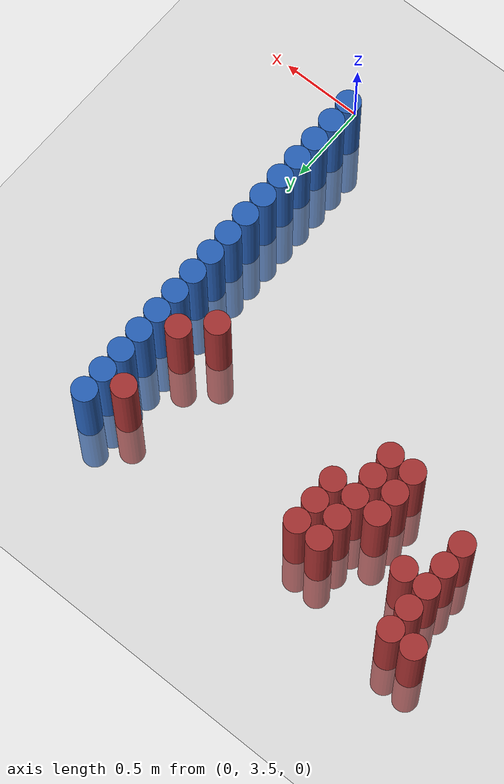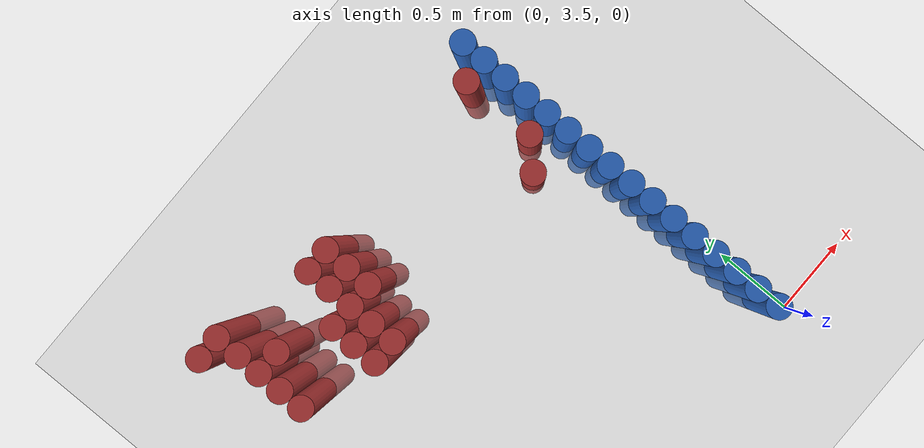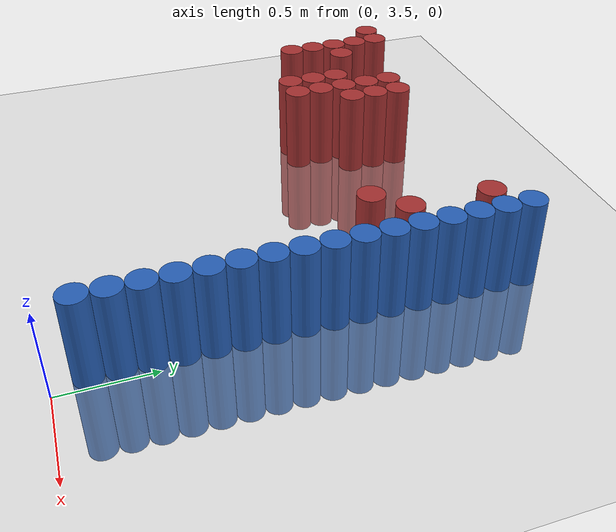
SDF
<sdf version="1.6">
 <world name="default">
  <model name="ground_plane">
   <static>1</static>
   <link name="link">
    <collision name="collision">
     <geometry><plane><normal>0 0 1</normal><size>100 100</size></plane></geometry>
     <surface><friction><ode><mu>100</mu><mu2>50</mu2></ode></friction></surface>
    </collision>
    <visual name="visual">
     <cast_shadows>0</cast_shadows>
     <geometry><plane><normal>0 0 1</normal><size>100 100</size></plane></geometry>
     <material>
      <script><uri>file://media/materials/scripts/gazebo.material</uri><name>Gazebo/Grey</name></script>
     </material>
    </visual>
   </link>
  </model>
  <model name="unit_cylinder_76">
   <static>1</static>
   <pose>-0.075000 3.675000 0.000000 0.000000 0.000000 0.000000</pose>
   <link name="link">
    <inertial>
     <mass>1</mass>
     <inertia><ixx>0.145833</ixx><ixy>0</ixy><ixz>0</ixz><iyy>0.145833</iyy><iyz>0</iyz><izz>0.125</izz></inertia>
    </inertial>
    <collision name="collision">
     <geometry><cylinder><radius>0.075000</radius><length>1</length></cylinder></geometry>
    </collision>
    <visual name="visual">
     <geometry><cylinder><radius>0.075000</radius><length>1</length></cylinder></geometry>
     <material>
      <ambient>0.152000 0.379000 0.720000 1</ambient>
      <diffuse>0.152000 0.379000 0.720000 1</diffuse>
     </material>
     <material>
      <script><name>Gazebo/Grey</name><uri>file://media/materials/scripts/gazebo.material</uri></script>
     </material>
    </visual>
    <sensor name="sensor_contact" type="contact"><contact><collision>collision</collision></contact></sensor>
   </link>
   <plugin filename="gz-sim-touchplugin-system" name="gz::sim::systems::TouchPlugin">
    <target>robot</target>
    <namespace>robot</namespace>
    <time>0.001</time>
    <enabled>true</enabled>
   </plugin>
  </model>
  <model name="unit_cylinder_78">
   <static>1</static>
   <pose>-0.075000 3.825000 0.000000 0.000000 0.000000 0.000000</pose>
   <link name="link">
    <inertial>
     <mass>1</mass>
     <inertia><ixx>0.145833</ixx><ixy>0</ixy><ixz>0</ixz><iyy>0.145833</iyy><iyz>0</iyz><izz>0.125</izz></inertia>
    </inertial>
    <collision name="collision">
     <geometry><cylinder><radius>0.075000</radius><length>1</length></cylinder></geometry>
    </collision>
    <visual name="visual">
     <geometry><cylinder><radius>0.075000</radius><length>1</length></cylinder></geometry>
     <material>
      <ambient>0.152000 0.379000 0.720000 1</ambient>
      <diffuse>0.152000 0.379000 0.720000 1</diffuse>
     </material>
     <material>
      <script><name>Gazebo/Grey</name><uri>file://media/materials/scripts/gazebo.material</uri></script>
     </material>
    </visual>
    <sensor name="sensor_contact" type="contact"><contact><collision>collision</collision></contact></sensor>
   </link>
   <plugin filename="gz-sim-touchplugin-system" name="gz::sim::systems::TouchPlugin">
    <target>robot</target>
    <namespace>robot</namespace>
    <time>0.001</time>
    <enabled>true</enabled>
   </plugin>
  </model>
  <model name="unit_cylinder_80">
   <static>1</static>
   <pose>-0.075000 3.975000 0.000000 0.000000 0.000000 0.000000</pose>
   <link name="link">
    <inertial>
     <mass>1</mass>
     <inertia><ixx>0.145833</ixx><ixy>0</ixy><ixz>0</ixz><iyy>0.145833</iyy><iyz>0</iyz><izz>0.125</izz></inertia>
    </inertial>
    <collision name="collision">
     <geometry><cylinder><radius>0.075000</radius><length>1</length></cylinder></geometry>
    </collision>
    <visual name="visual">
     <geometry><cylinder><radius>0.075000</radius><length>1</length></cylinder></geometry>
     <material>
      <ambient>0.152000 0.379000 0.720000 1</ambient>
      <diffuse>0.152000 0.379000 0.720000 1</diffuse>
     </material>
     <material>
      <script><name>Gazebo/Grey</name><uri>file://media/materials/scripts/gazebo.material</uri></script>
     </material>
    </visual>
    <sensor name="sensor_contact" type="contact"><contact><collision>collision</collision></contact></sensor>
   </link>
   <plugin filename="gz-sim-touchplugin-system" name="gz::sim::systems::TouchPlugin">
    <target>robot</target>
    <namespace>robot</namespace>
    <time>0.001</time>
    <enabled>true</enabled>
   </plugin>
  </model>
  <model name="unit_cylinder_82">
   <static>1</static>
   <pose>-0.075000 4.125000 0.000000 0.000000 0.000000 0.000000</pose>
   <link name="link">
    <inertial>
     <mass>1</mass>
     <inertia><ixx>0.145833</ixx><ixy>0</ixy><ixz>0</ixz><iyy>0.145833</iyy><iyz>0</iyz><izz>0.125</izz></inertia>
    </inertial>
    <collision name="collision">
     <geometry><cylinder><radius>0.075000</radius><length>1</length></cylinder></geometry>
    </collision>
    <visual name="visual">
     <geometry><cylinder><radius>0.075000</radius><length>1</length></cylinder></geometry>
     <material>
      <ambient>0.152000 0.379000 0.720000 1</ambient>
      <diffuse>0.152000 0.379000 0.720000 1</diffuse>
     </material>
     <material>
      <script><name>Gazebo/Grey</name><uri>file://media/materials/scripts/gazebo.material</uri></script>
     </material>
    </visual>
    <sensor name="sensor_contact" type="contact"><contact><collision>collision</collision></contact></sensor>
   </link>
   <plugin filename="gz-sim-touchplugin-system" name="gz::sim::systems::TouchPlugin">
    <target>robot</target>
    <namespace>robot</namespace>
    <time>0.001</time>
    <enabled>true</enabled>
   </plugin>
  </model>
  <model name="unit_cylinder_84">
   <static>1</static>
   <pose>-0.075000 4.275000 0.000000 0.000000 0.000000 0.000000</pose>
   <link name="link">
    <inertial>
     <mass>1</mass>
     <inertia><ixx>0.145833</ixx><ixy>0</ixy><ixz>0</ixz><iyy>0.145833</iyy><iyz>0</iyz><izz>0.125</izz></inertia>
    </inertial>
    <collision name="collision">
     <geometry><cylinder><radius>0.075000</radius><length>1</length></cylinder></geometry>
    </collision>
    <visual name="visual">
     <geometry><cylinder><radius>0.075000</radius><length>1</length></cylinder></geometry>
     <material>
      <ambient>0.152000 0.379000 0.720000 1</ambient>
      <diffuse>0.152000 0.379000 0.720000 1</diffuse>
     </material>
     <material>
      <script><name>Gazebo/Grey</name><uri>file://media/materials/scripts/gazebo.material</uri></script>
     </material>
    </visual>
    <sensor name="sensor_contact" type="contact"><contact><collision>collision</collision></contact></sensor>
   </link>
   <plugin filename="gz-sim-touchplugin-system" name="gz::sim::systems::TouchPlugin">
    <target>robot</target>
    <namespace>robot</namespace>
    <time>0.001</time>
    <enabled>true</enabled>
   </plugin>
  </model>
  <model name="unit_cylinder_86">
   <static>1</static>
   <pose>-0.075000 4.425000 0.000000 0.000000 0.000000 0.000000</pose>
   <link name="link">
    <inertial>
     <mass>1</mass>
     <inertia><ixx>0.145833</ixx><ixy>0</ixy><ixz>0</ixz><iyy>0.145833</iyy><iyz>0</iyz><izz>0.125</izz></inertia>
    </inertial>
    <collision name="collision">
     <geometry><cylinder><radius>0.075000</radius><length>1</length></cylinder></geometry>
    </collision>
    <visual name="visual">
     <geometry><cylinder><radius>0.075000</radius><length>1</length></cylinder></geometry>
     <material>
      <ambient>0.152000 0.379000 0.720000 1</ambient>
      <diffuse>0.152000 0.379000 0.720000 1</diffuse>
     </material>
     <material>
      <script><name>Gazebo/Grey</name><uri>file://media/materials/scripts/gazebo.material</uri></script>
     </material>
    </visual>
    <sensor name="sensor_contact" type="contact"><contact><collision>collision</collision></contact></sensor>
   </link>
   <plugin filename="gz-sim-touchplugin-system" name="gz::sim::systems::TouchPlugin">
    <target>robot</target>
    <namespace>robot</namespace>
    <time>0.001</time>
    <enabled>true</enabled>
   </plugin>
  </model>
  <model name="unit_cylinder_88">
   <static>1</static>
   <pose>-0.075000 4.575000 0.000000 0.000000 0.000000 0.000000</pose>
   <link name="link">
    <inertial>
     <mass>1</mass>
     <inertia><ixx>0.145833</ixx><ixy>0</ixy><ixz>0</ixz><iyy>0.145833</iyy><iyz>0</iyz><izz>0.125</izz></inertia>
    </inertial>
    <collision name="collision">
     <geometry><cylinder><radius>0.075000</radius><length>1</length></cylinder></geometry>
    </collision>
    <visual name="visual">
     <geometry><cylinder><radius>0.075000</radius><length>1</length></cylinder></geometry>
     <material>
      <ambient>0.152000 0.379000 0.720000 1</ambient>
      <diffuse>0.152000 0.379000 0.720000 1</diffuse>
     </material>
     <material>
      <script><name>Gazebo/Grey</name><uri>file://media/materials/scripts/gazebo.material</uri></script>
     </material>
    </visual>
    <sensor name="sensor_contact" type="contact"><contact><collision>collision</collision></contact></sensor>
   </link>
   <plugin filename="gz-sim-touchplugin-system" name="gz::sim::systems::TouchPlugin">
    <target>robot</target>
    <namespace>robot</namespace>
    <time>0.001</time>
    <enabled>true</enabled>
   </plugin>
  </model>
  <model name="unit_cylinder_90">
   <static>1</static>
   <pose>-0.075000 4.725000 0.000000 0.000000 0.000000 0.000000</pose>
   <link name="link">
    <inertial>
     <mass>1</mass>
     <inertia><ixx>0.145833</ixx><ixy>0</ixy><ixz>0</ixz><iyy>0.145833</iyy><iyz>0</iyz><izz>0.125</izz></inertia>
    </inertial>
    <collision name="collision">
     <geometry><cylinder><radius>0.075000</radius><length>1</length></cylinder></geometry>
    </collision>
    <visual name="visual">
     <geometry><cylinder><radius>0.075000</radius><length>1</length></cylinder></geometry>
     <material>
      <ambient>0.152000 0.379000 0.720000 1</ambient>
      <diffuse>0.152000 0.379000 0.720000 1</diffuse>
     </material>
     <material>
      <script><name>Gazebo/Grey</name><uri>file://media/materials/scripts/gazebo.material</uri></script>
     </material>
    </visual>
    <sensor name="sensor_contact" type="contact"><contact><collision>collision</collision></contact></sensor>
   </link>
   <plugin filename="gz-sim-touchplugin-system" name="gz::sim::systems::TouchPlugin">
    <target>robot</target>
    <namespace>robot</namespace>
    <time>0.001</time>
    <enabled>true</enabled>
   </plugin>
  </model>
  <model name="unit_cylinder_92">
   <static>1</static>
   <pose>-0.075000 4.875000 0.000000 0.000000 0.000000 0.000000</pose>
   <link name="link">
    <inertial>
     <mass>1</mass>
     <inertia><ixx>0.145833</ixx><ixy>0</ixy><ixz>0</ixz><iyy>0.145833</iyy><iyz>0</iyz><izz>0.125</izz></inertia>
    </inertial>
    <collision name="collision">
     <geometry><cylinder><radius>0.075000</radius><length>1</length></cylinder></geometry>
    </collision>
    <visual name="visual">
     <geometry><cylinder><radius>0.075000</radius><length>1</length></cylinder></geometry>
     <material>
      <ambient>0.152000 0.379000 0.720000 1</ambient>
      <diffuse>0.152000 0.379000 0.720000 1</diffuse>
     </material>
     <material>
      <script><name>Gazebo/Grey</name><uri>file://media/materials/scripts/gazebo.material</uri></script>
     </material>
    </visual>
    <sensor name="sensor_contact" type="contact"><contact><collision>collision</collision></contact></sensor>
   </link>
   <plugin filename="gz-sim-touchplugin-system" name="gz::sim::systems::TouchPlugin">
    <target>robot</target>
    <namespace>robot</namespace>
    <time>0.001</time>
    <enabled>true</enabled>
   </plugin>
  </model>
  <model name="unit_cylinder_94">
   <static>1</static>
   <pose>-0.075000 5.025000 0.000000 0.000000 0.000000 0.000000</pose>
   <link name="link">
    <inertial>
     <mass>1</mass>
     <inertia><ixx>0.145833</ixx><ixy>0</ixy><ixz>0</ixz><iyy>0.145833</iyy><iyz>0</iyz><izz>0.125</izz></inertia>
    </inertial>
    <collision name="collision">
     <geometry><cylinder><radius>0.075000</radius><length>1</length></cylinder></geometry>
    </collision>
    <visual name="visual">
     <geometry><cylinder><radius>0.075000</radius><length>1</length></cylinder></geometry>
     <material>
      <ambient>0.152000 0.379000 0.720000 1</ambient>
      <diffuse>0.152000 0.379000 0.720000 1</diffuse>
     </material>
     <material>
      <script><name>Gazebo/Grey</name><uri>file://media/materials/scripts/gazebo.material</uri></script>
     </material>
    </visual>
    <sensor name="sensor_contact" type="contact"><contact><collision>collision</collision></contact></sensor>
   </link>
   <plugin filename="gz-sim-touchplugin-system" name="gz::sim::systems::TouchPlugin">
    <target>robot</target>
    <namespace>robot</namespace>
    <time>0.001</time>
    <enabled>true</enabled>
   </plugin>
  </model>
  <model name="unit_cylinder_240">
   <static>1</static>
   <pose>-2.325000 5.925000 0.000000 0.000000 0.000000 0.000000</pose>
   <link name="link">
    <inertial>
     <mass>1</mass>
     <inertia><ixx>0.145833</ixx><ixy>0</ixy><ixz>0</ixz><iyy>0.145833</iyy><iyz>0</iyz><izz>0.125</izz></inertia>
    </inertial>
    <collision name="collision">
     <geometry><cylinder><radius>0.075000</radius><length>1</length></cylinder></geometry>
    </collision>
    <visual name="visual">
     <geometry><cylinder><radius>0.075000</radius><length>1</length></cylinder></geometry>
     <material>
      <ambient>0.648000 0.192000 0.192000 1</ambient>
      <diffuse>0.648000 0.192000 0.192000 1</diffuse>
     </material>
     <material>
      <script><name>Gazebo/Grey</name><uri>file://media/materials/scripts/gazebo.material</uri></script>
     </material>
    </visual>
    <sensor name="sensor_contact" type="contact"><contact><collision>collision</collision></contact></sensor>
   </link>
   <plugin filename="gz-sim-touchplugin-system" name="gz::sim::systems::TouchPlugin">
    <target>robot</target>
    <namespace>robot</namespace>
    <time>0.001</time>
    <enabled>true</enabled>
   </plugin>
  </model>
  <model name="unit_cylinder_244">
   <static>1</static>
   <pose>-2.175000 5.325000 0.000000 0.000000 0.000000 0.000000</pose>
   <link name="link">
    <inertial>
     <mass>1</mass>
     <inertia><ixx>0.145833</ixx><ixy>0</ixy><ixz>0</ixz><iyy>0.145833</iyy><iyz>0</iyz><izz>0.125</izz></inertia>
    </inertial>
    <collision name="collision">
     <geometry><cylinder><radius>0.075000</radius><length>1</length></cylinder></geometry>
    </collision>
    <visual name="visual">
     <geometry><cylinder><radius>0.075000</radius><length>1</length></cylinder></geometry>
     <material>
      <ambient>0.648000 0.192000 0.192000 1</ambient>
      <diffuse>0.648000 0.192000 0.192000 1</diffuse>
     </material>
     <material>
      <script><name>Gazebo/Grey</name><uri>file://media/materials/scripts/gazebo.material</uri></script>
     </material>
    </visual>
    <sensor name="sensor_contact" type="contact"><contact><collision>collision</collision></contact></sensor>
   </link>
   <plugin filename="gz-sim-touchplugin-system" name="gz::sim::systems::TouchPlugin">
    <target>robot</target>
    <namespace>robot</namespace>
    <time>0.001</time>
    <enabled>true</enabled>
   </plugin>
  </model>
  <model name="unit_cylinder_245">
   <static>1</static>
   <pose>-2.175000 5.475000 0.000000 0.000000 0.000000 0.000000</pose>
   <link name="link">
    <inertial>
     <mass>1</mass>
     <inertia><ixx>0.145833</ixx><ixy>0</ixy><ixz>0</ixz><iyy>0.145833</iyy><iyz>0</iyz><izz>0.125</izz></inertia>
    </inertial>
    <collision name="collision">
     <geometry><cylinder><radius>0.075000</radius><length>1</length></cylinder></geometry>
    </collision>
    <visual name="visual">
     <geometry><cylinder><radius>0.075000</radius><length>1</length></cylinder></geometry>
     <material>
      <ambient>0.648000 0.192000 0.192000 1</ambient>
      <diffuse>0.648000 0.192000 0.192000 1</diffuse>
     </material>
     <material>
      <script><name>Gazebo/Grey</name><uri>file://media/materials/scripts/gazebo.material</uri></script>
     </material>
    </visual>
    <sensor name="sensor_contact" type="contact"><contact><collision>collision</collision></contact></sensor>
   </link>
   <plugin filename="gz-sim-touchplugin-system" name="gz::sim::systems::TouchPlugin">
    <target>robot</target>
    <namespace>robot</namespace>
    <time>0.001</time>
    <enabled>true</enabled>
   </plugin>
  </model>
  <model name="unit_cylinder_246">
   <static>1</static>
   <pose>-2.175000 5.625000 0.000000 0.000000 0.000000 0.000000</pose>
   <link name="link">
    <inertial>
     <mass>1</mass>
     <inertia><ixx>0.145833</ixx><ixy>0</ixy><ixz>0</ixz><iyy>0.145833</iyy><iyz>0</iyz><izz>0.125</izz></inertia>
    </inertial>
    <collision name="collision">
     <geometry><cylinder><radius>0.075000</radius><length>1</length></cylinder></geometry>
    </collision>
    <visual name="visual">
     <geometry><cylinder><radius>0.075000</radius><length>1</length></cylinder></geometry>
     <material>
      <ambient>0.648000 0.192000 0.192000 1</ambient>
      <diffuse>0.648000 0.192000 0.192000 1</diffuse>
     </material>
     <material>
      <script><name>Gazebo/Grey</name><uri>file://media/materials/scripts/gazebo.material</uri></script>
     </material>
    </visual>
    <sensor name="sensor_contact" type="contact"><contact><collision>collision</collision></contact></sensor>
   </link>
   <plugin filename="gz-sim-touchplugin-system" name="gz::sim::systems::TouchPlugin">
    <target>robot</target>
    <namespace>robot</namespace>
    <time>0.001</time>
    <enabled>true</enabled>
   </plugin>
  </model>
  <model name="unit_cylinder_247">
   <static>1</static>
   <pose>-2.175000 5.775000 0.000000 0.000000 0.000000 0.000000</pose>
   <link name="link">
    <inertial>
     <mass>1</mass>
     <inertia><ixx>0.145833</ixx><ixy>0</ixy><ixz>0</ixz><iyy>0.145833</iyy><iyz>0</iyz><izz>0.125</izz></inertia>
    </inertial>
    <collision name="collision">
     <geometry><cylinder><radius>0.075000</radius><length>1</length></cylinder></geometry>
    </collision>
    <visual name="visual">
     <geometry><cylinder><radius>0.075000</radius><length>1</length></cylinder></geometry>
     <material>
      <ambient>0.648000 0.192000 0.192000 1</ambient>
      <diffuse>0.648000 0.192000 0.192000 1</diffuse>
     </material>
     <material>
      <script><name>Gazebo/Grey</name><uri>file://media/materials/scripts/gazebo.material</uri></script>
     </material>
    </visual>
    <sensor name="sensor_contact" type="contact"><contact><collision>collision</collision></contact></sensor>
   </link>
   <plugin filename="gz-sim-touchplugin-system" name="gz::sim::systems::TouchPlugin">
    <target>robot</target>
    <namespace>robot</namespace>
    <time>0.001</time>
    <enabled>true</enabled>
   </plugin>
  </model>
  <model name="unit_cylinder_248">
   <static>1</static>
   <pose>-2.175000 5.925000 0.000000 0.000000 0.000000 0.000000</pose>
   <link name="link">
    <inertial>
     <mass>1</mass>
     <inertia><ixx>0.145833</ixx><ixy>0</ixy><ixz>0</ixz><iyy>0.145833</iyy><iyz>0</iyz><izz>0.125</izz></inertia>
    </inertial>
    <collision name="collision">
     <geometry><cylinder><radius>0.075000</radius><length>1</length></cylinder></geometry>
    </collision>
    <visual name="visual">
     <geometry><cylinder><radius>0.075000</radius><length>1</length></cylinder></geometry>
     <material>
      <ambient>0.648000 0.192000 0.192000 1</ambient>
      <diffuse>0.648000 0.192000 0.192000 1</diffuse>
     </material>
     <material>
      <script><name>Gazebo/Grey</name><uri>file://media/materials/scripts/gazebo.material</uri></script>
     </material>
    </visual>
    <sensor name="sensor_contact" type="contact"><contact><collision>collision</collision></contact></sensor>
   </link>
   <plugin filename="gz-sim-touchplugin-system" name="gz::sim::systems::TouchPlugin">
    <target>robot</target>
    <namespace>robot</namespace>
    <time>0.001</time>
    <enabled>true</enabled>
   </plugin>
  </model>
  <model name="unit_cylinder_253">
   <static>1</static>
   <pose>-2.025000 5.625000 0.000000 0.000000 0.000000 0.000000</pose>
   <link name="link">
    <inertial>
     <mass>1</mass>
     <inertia><ixx>0.145833</ixx><ixy>0</ixy><ixz>0</ixz><iyy>0.145833</iyy><iyz>0</iyz><izz>0.125</izz></inertia>
    </inertial>
    <collision name="collision">
     <geometry><cylinder><radius>0.075000</radius><length>1</length></cylinder></geometry>
    </collision>
    <visual name="visual">
     <geometry><cylinder><radius>0.075000</radius><length>1</length></cylinder></geometry>
     <material>
      <ambient>0.648000 0.192000 0.192000 1</ambient>
      <diffuse>0.648000 0.192000 0.192000 1</diffuse>
     </material>
     <material>
      <script><name>Gazebo/Grey</name><uri>file://media/materials/scripts/gazebo.material</uri></script>
     </material>
    </visual>
    <sensor name="sensor_contact" type="contact"><contact><collision>collision</collision></contact></sensor>
   </link>
   <plugin filename="gz-sim-touchplugin-system" name="gz::sim::systems::TouchPlugin">
    <target>robot</target>
    <namespace>robot</namespace>
    <time>0.001</time>
    <enabled>true</enabled>
   </plugin>
  </model>
  <model name="unit_cylinder_260">
   <static>1</static>
   <pose>-1.725000 5.175000 0.000000 0.000000 0.000000 0.000000</pose>
   <link name="link">
    <inertial>
     <mass>1</mass>
     <inertia><ixx>0.145833</ixx><ixy>0</ixy><ixz>0</ixz><iyy>0.145833</iyy><iyz>0</iyz><izz>0.125</izz></inertia>
    </inertial>
    <collision name="collision">
     <geometry><cylinder><radius>0.075000</radius><length>1</length></cylinder></geometry>
    </collision>
    <visual name="visual">
     <geometry><cylinder><radius>0.075000</radius><length>1</length></cylinder></geometry>
     <material>
      <ambient>0.648000 0.192000 0.192000 1</ambient>
      <diffuse>0.648000 0.192000 0.192000 1</diffuse>
     </material>
     <material>
      <script><name>Gazebo/Grey</name><uri>file://media/materials/scripts/gazebo.material</uri></script>
     </material>
    </visual>
    <sensor name="sensor_contact" type="contact"><contact><collision>collision</collision></contact></sensor>
   </link>
   <plugin filename="gz-sim-touchplugin-system" name="gz::sim::systems::TouchPlugin">
    <target>robot</target>
    <namespace>robot</namespace>
    <time>0.001</time>
    <enabled>true</enabled>
   </plugin>
  </model>
  <model name="unit_cylinder_261">
   <static>1</static>
   <pose>-1.725000 5.325000 0.000000 0.000000 0.000000 0.000000</pose>
   <link name="link">
    <inertial>
     <mass>1</mass>
     <inertia><ixx>0.145833</ixx><ixy>0</ixy><ixz>0</ixz><iyy>0.145833</iyy><iyz>0</iyz><izz>0.125</izz></inertia>
    </inertial>
    <collision name="collision">
     <geometry><cylinder><radius>0.075000</radius><length>1</length></cylinder></geometry>
    </collision>
    <visual name="visual">
     <geometry><cylinder><radius>0.075000</radius><length>1</length></cylinder></geometry>
     <material>
      <ambient>0.648000 0.192000 0.192000 1</ambient>
      <diffuse>0.648000 0.192000 0.192000 1</diffuse>
     </material>
     <material>
      <script><name>Gazebo/Grey</name><uri>file://media/materials/scripts/gazebo.material</uri></script>
     </material>
    </visual>
    <sensor name="sensor_contact" type="contact"><contact><collision>collision</collision></contact></sensor>
   </link>
   <plugin filename="gz-sim-touchplugin-system" name="gz::sim::systems::TouchPlugin">
    <target>robot</target>
    <namespace>robot</namespace>
    <time>0.001</time>
    <enabled>true</enabled>
   </plugin>
  </model>
  <model name="unit_cylinder_262">
   <static>1</static>
   <pose>-1.725000 5.475000 0.000000 0.000000 0.000000 0.000000</pose>
   <link name="link">
    <inertial>
     <mass>1</mass>
     <inertia><ixx>0.145833</ixx><ixy>0</ixy><ixz>0</ixz><iyy>0.145833</iyy><iyz>0</iyz><izz>0.125</izz></inertia>
    </inertial>
    <collision name="collision">
     <geometry><cylinder><radius>0.075000</radius><length>1</length></cylinder></geometry>
    </collision>
    <visual name="visual">
     <geometry><cylinder><radius>0.075000</radius><length>1</length></cylinder></geometry>
     <material>
      <ambient>0.648000 0.192000 0.192000 1</ambient>
      <diffuse>0.648000 0.192000 0.192000 1</diffuse>
     </material>
     <material>
      <script><name>Gazebo/Grey</name><uri>file://media/materials/scripts/gazebo.material</uri></script>
     </material>
    </visual>
    <sensor name="sensor_contact" type="contact"><contact><collision>collision</collision></contact></sensor>
   </link>
   <plugin filename="gz-sim-touchplugin-system" name="gz::sim::systems::TouchPlugin">
    <target>robot</target>
    <namespace>robot</namespace>
    <time>0.001</time>
    <enabled>true</enabled>
   </plugin>
  </model>
  <model name="unit_cylinder_263">
   <static>1</static>
   <pose>-1.575000 5.175000 0.000000 0.000000 0.000000 0.000000</pose>
   <link name="link">
    <inertial>
     <mass>1</mass>
     <inertia><ixx>0.145833</ixx><ixy>0</ixy><ixz>0</ixz><iyy>0.145833</iyy><iyz>0</iyz><izz>0.125</izz></inertia>
    </inertial>
    <collision name="collision">
     <geometry><cylinder><radius>0.075000</radius><length>1</length></cylinder></geometry>
    </collision>
    <visual name="visual">
     <geometry><cylinder><radius>0.075000</radius><length>1</length></cylinder></geometry>
     <material>
      <ambient>0.648000 0.192000 0.192000 1</ambient>
      <diffuse>0.648000 0.192000 0.192000 1</diffuse>
     </material>
     <material>
      <script><name>Gazebo/Grey</name><uri>file://media/materials/scripts/gazebo.material</uri></script>
     </material>
    </visual>
    <sensor name="sensor_contact" type="contact"><contact><collision>collision</collision></contact></sensor>
   </link>
   <plugin filename="gz-sim-touchplugin-system" name="gz::sim::systems::TouchPlugin">
    <target>robot</target>
    <namespace>robot</namespace>
    <time>0.001</time>
    <enabled>true</enabled>
   </plugin>
  </model>
  <model name="unit_cylinder_264">
   <static>1</static>
   <pose>-1.575000 5.325000 0.000000 0.000000 0.000000 0.000000</pose>
   <link name="link">
    <inertial>
     <mass>1</mass>
     <inertia><ixx>0.145833</ixx><ixy>0</ixy><ixz>0</ixz><iyy>0.145833</iyy><iyz>0</iyz><izz>0.125</izz></inertia>
    </inertial>
    <collision name="collision">
     <geometry><cylinder><radius>0.075000</radius><length>1</length></cylinder></geometry>
    </collision>
    <visual name="visual">
     <geometry><cylinder><radius>0.075000</radius><length>1</length></cylinder></geometry>
     <material>
      <ambient>0.648000 0.192000 0.192000 1</ambient>
      <diffuse>0.648000 0.192000 0.192000 1</diffuse>
     </material>
     <material>
      <script><name>Gazebo/Grey</name><uri>file://media/materials/scripts/gazebo.material</uri></script>
     </material>
    </visual>
    <sensor name="sensor_contact" type="contact"><contact><collision>collision</collision></contact></sensor>
   </link>
   <plugin filename="gz-sim-touchplugin-system" name="gz::sim::systems::TouchPlugin">
    <target>robot</target>
    <namespace>robot</namespace>
    <time>0.001</time>
    <enabled>true</enabled>
   </plugin>
  </model>
  <model name="unit_cylinder_265">
   <static>1</static>
   <pose>-1.575000 5.475000 0.000000 0.000000 0.000000 0.000000</pose>
   <link name="link">
    <inertial>
     <mass>1</mass>
     <inertia><ixx>0.145833</ixx><ixy>0</ixy><ixz>0</ixz><iyy>0.145833</iyy><iyz>0</iyz><izz>0.125</izz></inertia>
    </inertial>
    <collision name="collision">
     <geometry><cylinder><radius>0.075000</radius><length>1</length></cylinder></geometry>
    </collision>
    <visual name="visual">
     <geometry><cylinder><radius>0.075000</radius><length>1</length></cylinder></geometry>
     <material>
      <ambient>0.648000 0.192000 0.192000 1</ambient>
      <diffuse>0.648000 0.192000 0.192000 1</diffuse>
     </material>
     <material>
      <script><name>Gazebo/Grey</name><uri>file://media/materials/scripts/gazebo.material</uri></script>
     </material>
    </visual>
    <sensor name="sensor_contact" type="contact"><contact><collision>collision</collision></contact></sensor>
   </link>
   <plugin filename="gz-sim-touchplugin-system" name="gz::sim::systems::TouchPlugin">
    <target>robot</target>
    <namespace>robot</namespace>
    <time>0.001</time>
    <enabled>true</enabled>
   </plugin>
  </model>
  <model name="unit_cylinder_266">
   <static>1</static>
   <pose>-1.575000 5.625000 0.000000 0.000000 0.000000 0.000000</pose>
   <link name="link">
    <inertial>
     <mass>1</mass>
     <inertia><ixx>0.145833</ixx><ixy>0</ixy><ixz>0</ixz><iyy>0.145833</iyy><iyz>0</iyz><izz>0.125</izz></inertia>
    </inertial>
    <collision name="collision">
     <geometry><cylinder><radius>0.075000</radius><length>1</length></cylinder></geometry>
    </collision>
    <visual name="visual">
     <geometry><cylinder><radius>0.075000</radius><length>1</length></cylinder></geometry>
     <material>
      <ambient>0.648000 0.192000 0.192000 1</ambient>
      <diffuse>0.648000 0.192000 0.192000 1</diffuse>
     </material>
     <material>
      <script><name>Gazebo/Grey</name><uri>file://media/materials/scripts/gazebo.material</uri></script>
     </material>
    </visual>
    <sensor name="sensor_contact" type="contact"><contact><collision>collision</collision></contact></sensor>
   </link>
   <plugin filename="gz-sim-touchplugin-system" name="gz::sim::systems::TouchPlugin">
    <target>robot</target>
    <namespace>robot</namespace>
    <time>0.001</time>
    <enabled>true</enabled>
   </plugin>
  </model>
  <model name="unit_cylinder_267">
   <static>1</static>
   <pose>-1.575000 5.775000 0.000000 0.000000 0.000000 0.000000</pose>
   <link name="link">
    <inertial>
     <mass>1</mass>
     <inertia><ixx>0.145833</ixx><ixy>0</ixy><ixz>0</ixz><iyy>0.145833</iyy><iyz>0</iyz><izz>0.125</izz></inertia>
    </inertial>
    <collision name="collision">
     <geometry><cylinder><radius>0.075000</radius><length>1</length></cylinder></geometry>
    </collision>
    <visual name="visual">
     <geometry><cylinder><radius>0.075000</radius><length>1</length></cylinder></geometry>
     <material>
      <ambient>0.648000 0.192000 0.192000 1</ambient>
      <diffuse>0.648000 0.192000 0.192000 1</diffuse>
     </material>
     <material>
      <script><name>Gazebo/Grey</name><uri>file://media/materials/scripts/gazebo.material</uri></script>
     </material>
    </visual>
    <sensor name="sensor_contact" type="contact"><contact><collision>collision</collision></contact></sensor>
   </link>
   <plugin filename="gz-sim-touchplugin-system" name="gz::sim::systems::TouchPlugin">
    <target>robot</target>
    <namespace>robot</namespace>
    <time>0.001</time>
    <enabled>true</enabled>
   </plugin>
  </model>
  <model name="unit_cylinder_268">
   <static>1</static>
   <pose>-1.425000 5.475000 0.000000 0.000000 0.000000 0.000000</pose>
   <link name="link">
    <inertial>
     <mass>1</mass>
     <inertia><ixx>0.145833</ixx><ixy>0</ixy><ixz>0</ixz><iyy>0.145833</iyy><iyz>0</iyz><izz>0.125</izz></inertia>
    </inertial>
    <collision name="collision">
     <geometry><cylinder><radius>0.075000</radius><length>1</length></cylinder></geometry>
    </collision>
    <visual name="visual">
     <geometry><cylinder><radius>0.075000</radius><length>1</length></cylinder></geometry>
     <material>
      <ambient>0.648000 0.192000 0.192000 1</ambient>
      <diffuse>0.648000 0.192000 0.192000 1</diffuse>
     </material>
     <material>
      <script><name>Gazebo/Grey</name><uri>file://media/materials/scripts/gazebo.material</uri></script>
     </material>
    </visual>
    <sensor name="sensor_contact" type="contact"><contact><collision>collision</collision></contact></sensor>
   </link>
   <plugin filename="gz-sim-touchplugin-system" name="gz::sim::systems::TouchPlugin">
    <target>robot</target>
    <namespace>robot</namespace>
    <time>0.001</time>
    <enabled>true</enabled>
   </plugin>
  </model>
  <model name="unit_cylinder_269">
   <static>1</static>
   <pose>-1.425000 5.625000 0.000000 0.000000 0.000000 0.000000</pose>
   <link name="link">
    <inertial>
     <mass>1</mass>
     <inertia><ixx>0.145833</ixx><ixy>0</ixy><ixz>0</ixz><iyy>0.145833</iyy><iyz>0</iyz><izz>0.125</izz></inertia>
    </inertial>
    <collision name="collision">
     <geometry><cylinder><radius>0.075000</radius><length>1</length></cylinder></geometry>
    </collision>
    <visual name="visual">
     <geometry><cylinder><radius>0.075000</radius><length>1</length></cylinder></geometry>
     <material>
      <ambient>0.648000 0.192000 0.192000 1</ambient>
      <diffuse>0.648000 0.192000 0.192000 1</diffuse>
     </material>
     <material>
      <script><name>Gazebo/Grey</name><uri>file://media/materials/scripts/gazebo.material</uri></script>
     </material>
    </visual>
    <sensor name="sensor_contact" type="contact"><contact><collision>collision</collision></contact></sensor>
   </link>
   <plugin filename="gz-sim-touchplugin-system" name="gz::sim::systems::TouchPlugin">
    <target>robot</target>
    <namespace>robot</namespace>
    <time>0.001</time>
    <enabled>true</enabled>
   </plugin>
  </model>
  <model name="unit_cylinder_270">
   <static>1</static>
   <pose>-1.425000 5.775000 0.000000 0.000000 0.000000 0.000000</pose>
   <link name="link">
    <inertial>
     <mass>1</mass>
     <inertia><ixx>0.145833</ixx><ixy>0</ixy><ixz>0</ixz><iyy>0.145833</iyy><iyz>0</iyz><izz>0.125</izz></inertia>
    </inertial>
    <collision name="collision">
     <geometry><cylinder><radius>0.075000</radius><length>1</length></cylinder></geometry>
    </collision>
    <visual name="visual">
     <geometry><cylinder><radius>0.075000</radius><length>1</length></cylinder></geometry>
     <material>
      <ambient>0.648000 0.192000 0.192000 1</ambient>
      <diffuse>0.648000 0.192000 0.192000 1</diffuse>
     </material>
     <material>
      <script><name>Gazebo/Grey</name><uri>file://media/materials/scripts/gazebo.material</uri></script>
     </material>
    </visual>
    <sensor name="sensor_contact" type="contact"><contact><collision>collision</collision></contact></sensor>
   </link>
   <plugin filename="gz-sim-touchplugin-system" name="gz::sim::systems::TouchPlugin">
    <target>robot</target>
    <namespace>robot</namespace>
    <time>0.001</time>
    <enabled>true</enabled>
   </plugin>
  </model>
  <model name="unit_cylinder_284">
   <static>1</static>
   <pose>-0.375000 5.175000 0.000000 0.000000 0.000000 0.000000</pose>
   <link name="link">
    <inertial>
     <mass>1</mass>
     <inertia><ixx>0.145833</ixx><ixy>0</ixy><ixz>0</ixz><iyy>0.145833</iyy><iyz>0</iyz><izz>0.125</izz></inertia>
    </inertial>
    <collision name="collision">
     <geometry><cylinder><radius>0.075000</radius><length>1</length></cylinder></geometry>
    </collision>
    <visual name="visual">
     <geometry><cylinder><radius>0.075000</radius><length>1</length></cylinder></geometry>
     <material>
      <ambient>0.648000 0.192000 0.192000 1</ambient>
      <diffuse>0.648000 0.192000 0.192000 1</diffuse>
     </material>
     <material>
      <script><name>Gazebo/Grey</name><uri>file://media/materials/scripts/gazebo.material</uri></script>
     </material>
    </visual>
    <sensor name="sensor_contact" type="contact"><contact><collision>collision</collision></contact></sensor>
   </link>
   <plugin filename="gz-sim-touchplugin-system" name="gz::sim::systems::TouchPlugin">
    <target>robot</target>
    <namespace>robot</namespace>
    <time>0.001</time>
    <enabled>true</enabled>
   </plugin>
  </model>
  <model name="unit_cylinder_293">
   <static>1</static>
   <pose>-0.225000 5.325000 0.000000 0.000000 0.000000 0.000000</pose>
   <link name="link">
    <inertial>
     <mass>1</mass>
     <inertia><ixx>0.145833</ixx><ixy>0</ixy><ixz>0</ixz><iyy>0.145833</iyy><iyz>0</iyz><izz>0.125</izz></inertia>
    </inertial>
    <collision name="collision">
     <geometry><cylinder><radius>0.075000</radius><length>1</length></cylinder></geometry>
    </collision>
    <visual name="visual">
     <geometry><cylinder><radius>0.075000</radius><length>1</length></cylinder></geometry>
     <material>
      <ambient>0.648000 0.192000 0.192000 1</ambient>
      <diffuse>0.648000 0.192000 0.192000 1</diffuse>
     </material>
     <material>
      <script><name>Gazebo/Grey</name><uri>file://media/materials/scripts/gazebo.material</uri></script>
     </material>
    </visual>
    <sensor name="sensor_contact" type="contact"><contact><collision>collision</collision></contact></sensor>
   </link>
   <plugin filename="gz-sim-touchplugin-system" name="gz::sim::systems::TouchPlugin">
    <target>robot</target>
    <namespace>robot</namespace>
    <time>0.001</time>
    <enabled>true</enabled>
   </plugin>
  </model>
  <model name="unit_cylinder_294">
   <static>1</static>
   <pose>-0.225000 5.775000 0.000000 0.000000 0.000000 0.000000</pose>
   <link name="link">
    <inertial>
     <mass>1</mass>
     <inertia><ixx>0.145833</ixx><ixy>0</ixy><ixz>0</ixz><iyy>0.145833</iyy><iyz>0</iyz><izz>0.125</izz></inertia>
    </inertial>
    <collision name="collision">
     <geometry><cylinder><radius>0.075000</radius><length>1</length></cylinder></geometry>
    </collision>
    <visual name="visual">
     <geometry><cylinder><radius>0.075000</radius><length>1</length></cylinder></geometry>
     <material>
      <ambient>0.648000 0.192000 0.192000 1</ambient>
      <diffuse>0.648000 0.192000 0.192000 1</diffuse>
     </material>
     <material>
      <script><name>Gazebo/Grey</name><uri>file://media/materials/scripts/gazebo.material</uri></script>
     </material>
    </visual>
    <sensor name="sensor_contact" type="contact"><contact><collision>collision</collision></contact></sensor>
   </link>
   <plugin filename="gz-sim-touchplugin-system" name="gz::sim::systems::TouchPlugin">
    <target>robot</target>
    <namespace>robot</namespace>
    <time>0.001</time>
    <enabled>true</enabled>
   </plugin>
  </model>
  <model name="unit_cylinder_308">
   <static>1</static>
   <pose>-0.075000 5.175000 0.000000 0.000000 0.000000 0.000000</pose>
   <link name="link">
    <inertial>
     <mass>1</mass>
     <inertia><ixx>0.145833</ixx><ixy>0</ixy><ixz>0</ixz><iyy>0.145833</iyy><iyz>0</iyz><izz>0.125</izz></inertia>
    </inertial>
    <collision name="collision">
     <geometry><cylinder><radius>0.075000</radius><length>1</length></cylinder></geometry>
    </collision>
    <visual name="visual">
     <geometry><cylinder><radius>0.075000</radius><length>1</length></cylinder></geometry>
     <material>
      <ambient>0.152000 0.379000 0.720000 1</ambient>
      <diffuse>0.152000 0.379000 0.720000 1</diffuse>
     </material>
     <material>
      <script><name>Gazebo/Grey</name><uri>file://media/materials/scripts/gazebo.material</uri></script>
     </material>
    </visual>
    <sensor name="sensor_contact" type="contact"><contact><collision>collision</collision></contact></sensor>
   </link>
   <plugin filename="gz-sim-touchplugin-system" name="gz::sim::systems::TouchPlugin">
    <target>robot</target>
    <namespace>robot</namespace>
    <time>0.001</time>
    <enabled>true</enabled>
   </plugin>
  </model>
  <model name="unit_cylinder_309">
   <static>1</static>
   <pose>-0.075000 5.325000 0.000000 0.000000 0.000000 0.000000</pose>
   <link name="link">
    <inertial>
     <mass>1</mass>
     <inertia><ixx>0.145833</ixx><ixy>0</ixy><ixz>0</ixz><iyy>0.145833</iyy><iyz>0</iyz><izz>0.125</izz></inertia>
    </inertial>
    <collision name="collision">
     <geometry><cylinder><radius>0.075000</radius><length>1</length></cylinder></geometry>
    </collision>
    <visual name="visual">
     <geometry><cylinder><radius>0.075000</radius><length>1</length></cylinder></geometry>
     <material>
      <ambient>0.152000 0.379000 0.720000 1</ambient>
      <diffuse>0.152000 0.379000 0.720000 1</diffuse>
     </material>
     <material>
      <script><name>Gazebo/Grey</name><uri>file://media/materials/scripts/gazebo.material</uri></script>
     </material>
    </visual>
    <sensor name="sensor_contact" type="contact"><contact><collision>collision</collision></contact></sensor>
   </link>
   <plugin filename="gz-sim-touchplugin-system" name="gz::sim::systems::TouchPlugin">
    <target>robot</target>
    <namespace>robot</namespace>
    <time>0.001</time>
    <enabled>true</enabled>
   </plugin>
  </model>
  <model name="unit_cylinder_310">
   <static>1</static>
   <pose>-0.075000 5.475000 0.000000 0.000000 0.000000 0.000000</pose>
   <link name="link">
    <inertial>
     <mass>1</mass>
     <inertia><ixx>0.145833</ixx><ixy>0</ixy><ixz>0</ixz><iyy>0.145833</iyy><iyz>0</iyz><izz>0.125</izz></inertia>
    </inertial>
    <collision name="collision">
     <geometry><cylinder><radius>0.075000</radius><length>1</length></cylinder></geometry>
    </collision>
    <visual name="visual">
     <geometry><cylinder><radius>0.075000</radius><length>1</length></cylinder></geometry>
     <material>
      <ambient>0.152000 0.379000 0.720000 1</ambient>
      <diffuse>0.152000 0.379000 0.720000 1</diffuse>
     </material>
     <material>
      <script><name>Gazebo/Grey</name><uri>file://media/materials/scripts/gazebo.material</uri></script>
     </material>
    </visual>
    <sensor name="sensor_contact" type="contact"><contact><collision>collision</collision></contact></sensor>
   </link>
   <plugin filename="gz-sim-touchplugin-system" name="gz::sim::systems::TouchPlugin">
    <target>robot</target>
    <namespace>robot</namespace>
    <time>0.001</time>
    <enabled>true</enabled>
   </plugin>
  </model>
  <model name="unit_cylinder_311">
   <static>1</static>
   <pose>-0.075000 5.625000 0.000000 0.000000 0.000000 0.000000</pose>
   <link name="link">
    <inertial>
     <mass>1</mass>
     <inertia><ixx>0.145833</ixx><ixy>0</ixy><ixz>0</ixz><iyy>0.145833</iyy><iyz>0</iyz><izz>0.125</izz></inertia>
    </inertial>
    <collision name="collision">
     <geometry><cylinder><radius>0.075000</radius><length>1</length></cylinder></geometry>
    </collision>
    <visual name="visual">
     <geometry><cylinder><radius>0.075000</radius><length>1</length></cylinder></geometry>
     <material>
      <ambient>0.152000 0.379000 0.720000 1</ambient>
      <diffuse>0.152000 0.379000 0.720000 1</diffuse>
     </material>
     <material>
      <script><name>Gazebo/Grey</name><uri>file://media/materials/scripts/gazebo.material</uri></script>
     </material>
    </visual>
    <sensor name="sensor_contact" type="contact"><contact><collision>collision</collision></contact></sensor>
   </link>
   <plugin filename="gz-sim-touchplugin-system" name="gz::sim::systems::TouchPlugin">
    <target>robot</target>
    <namespace>robot</namespace>
    <time>0.001</time>
    <enabled>true</enabled>
   </plugin>
  </model>
  <model name="unit_cylinder_312">
   <static>1</static>
   <pose>-0.075000 5.775000 0.000000 0.000000 0.000000 0.000000</pose>
   <link name="link">
    <inertial>
     <mass>1</mass>
     <inertia><ixx>0.145833</ixx><ixy>0</ixy><ixz>0</ixz><iyy>0.145833</iyy><iyz>0</iyz><izz>0.125</izz></inertia>
    </inertial>
    <collision name="collision">
     <geometry><cylinder><radius>0.075000</radius><length>1</length></cylinder></geometry>
    </collision>
    <visual name="visual">
     <geometry><cylinder><radius>0.075000</radius><length>1</length></cylinder></geometry>
     <material>
      <ambient>0.152000 0.379000 0.720000 1</ambient>
      <diffuse>0.152000 0.379000 0.720000 1</diffuse>
     </material>
     <material>
      <script><name>Gazebo/Grey</name><uri>file://media/materials/scripts/gazebo.material</uri></script>
     </material>
    </visual>
    <sensor name="sensor_contact" type="contact"><contact><collision>collision</collision></contact></sensor>
   </link>
   <plugin filename="gz-sim-touchplugin-system" name="gz::sim::systems::TouchPlugin">
    <target>robot</target>
    <namespace>robot</namespace>
    <time>0.001</time>
    <enabled>true</enabled>
   </plugin>
  </model>
  <model name="unit_cylinder_313">
   <static>1</static>
   <pose>-0.075000 5.925000 0.000000 0.000000 0.000000 0.000000</pose>
   <link name="link">
    <inertial>
     <mass>1</mass>
     <inertia><ixx>0.145833</ixx><ixy>0</ixy><ixz>0</ixz><iyy>0.145833</iyy><iyz>0</iyz><izz>0.125</izz></inertia>
    </inertial>
    <collision name="collision">
     <geometry><cylinder><radius>0.075000</radius><length>1</length></cylinder></geometry>
    </collision>
    <visual name="visual">
     <geometry><cylinder><radius>0.075000</radius><length>1</length></cylinder></geometry>
     <material>
      <ambient>0.152000 0.379000 0.720000 1</ambient>
      <diffuse>0.152000 0.379000 0.720000 1</diffuse>
     </material>
     <material>
      <script><name>Gazebo/Grey</name><uri>file://media/materials/scripts/gazebo.material</uri></script>
     </material>
    </visual>
    <sensor name="sensor_contact" type="contact"><contact><collision>collision</collision></contact></sensor>
   </link>
   <plugin filename="gz-sim-touchplugin-system" name="gz::sim::systems::TouchPlugin">
    <target>robot</target>
    <namespace>robot</namespace>
    <time>0.001</time>
    <enabled>true</enabled>
   </plugin>
  </model>
 </world>
</sdf>
